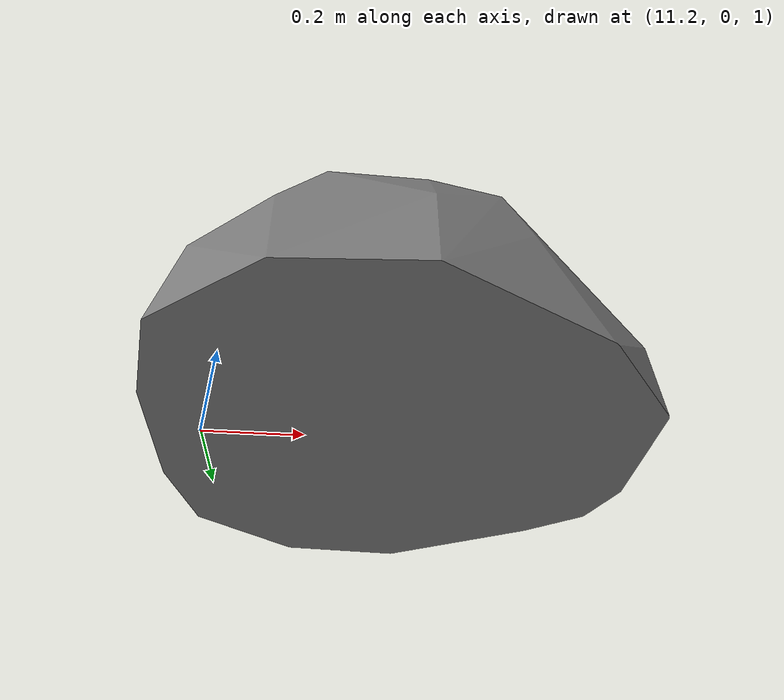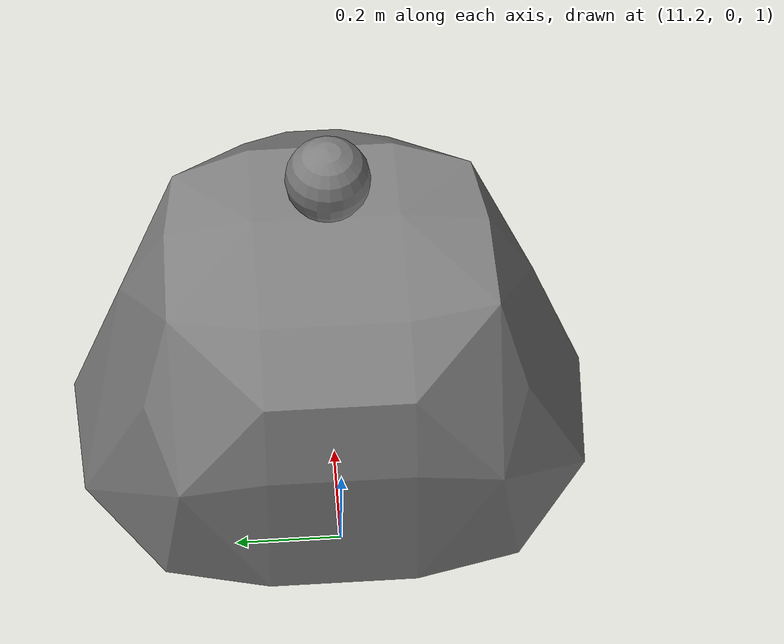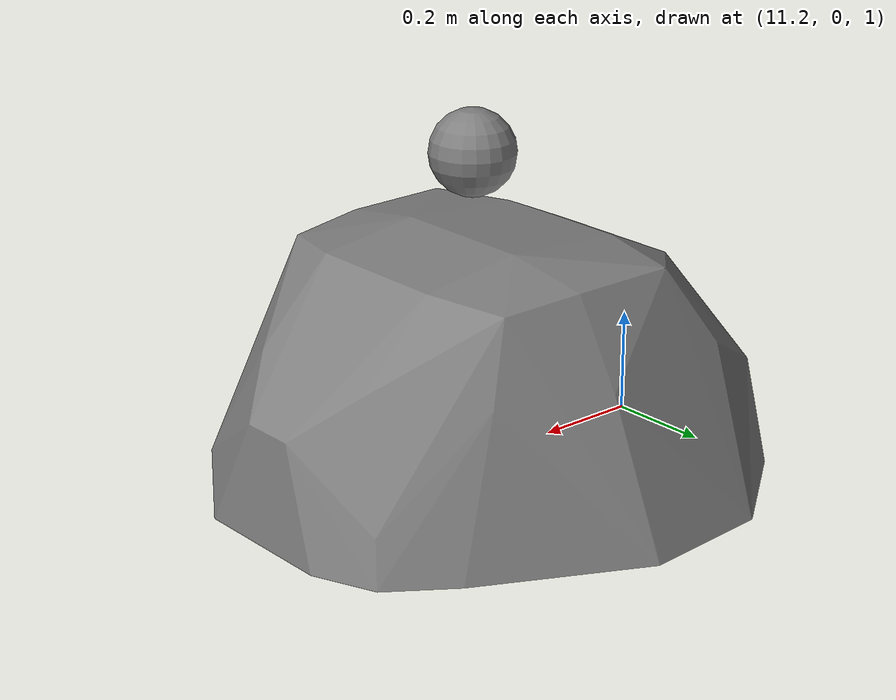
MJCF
<mujoco><option timestep="0.001"/>
<asset><mesh name="k" file="convex/cvx_000.stl"/></asset>
<worldbody>
<geom name="k" mesh="k" friction="1.0" contype="1" conaffinity="1"/>
<body name="s" pos="11.593 -0.000 1.600"><freejoint/><geom type="sphere" size="0.08" mass="0.5"/></body>
</worldbody></mujoco>
